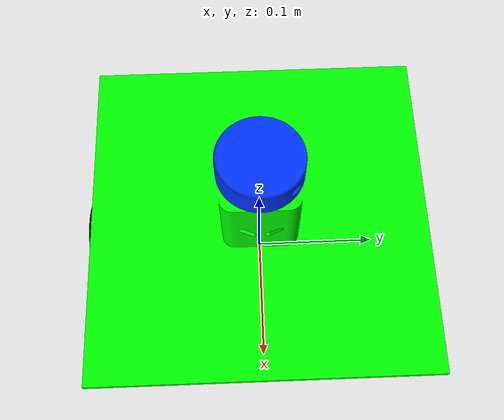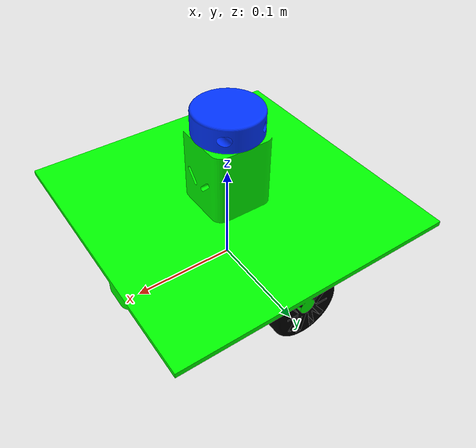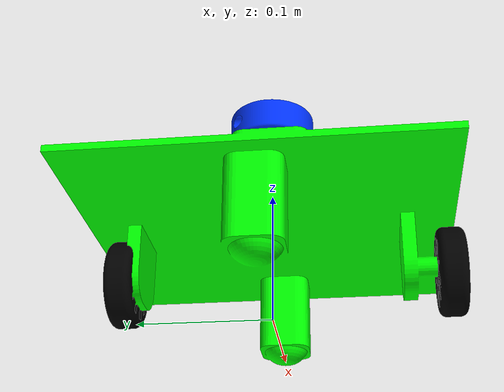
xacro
<?xml version="1.0" ?>
<robot name="nexva" xmlns:xacro="http://www.ros.org/wiki/xacro">

<xacro:include filename="$(find nexva_description)/urdf/materials.xacro" />
<xacro:include filename="$(find nexva_description)/urdf/nexva.gazebo" />

  <link name="base_footprint"/>

  <joint name="base_footprint_joint" type="fixed">
    <parent link="base_footprint"/>
    <child link="base_link"/>

    <origin xyz="0 0 0" rpy="0 0 1.5708"/>
  </joint>

<link name="base_link">
  <inertial>
    <origin xyz="0 0 0" rpy="0 0 0"/>
    <mass value="6.743767331968088"/>
    <inertia ixx="0.040343" iyy="0.056755" izz="0.029008" ixy="1.8e-05" iyz="1e-05" ixz="-0.0"/>
  </inertial>
  <visual>
    <origin xyz="0 0 0.07" rpy="1.5708 0 0"/>
    <geometry>
      <mesh filename="package://nexva_description/meshes/base_link.stl" scale="0.001 0.001 0.001"/>
    </geometry>
    <material name="green"/>
  </visual>
  <collision>
    <origin xyz="0 0 0.07" rpy="1.5708 0 0"/>
    <geometry>
      <mesh filename="package://nexva_description/meshes/base_link.stl" scale="0.001 0.001 0.001"/>
    </geometry>
  </collision>
</link>

<link name="laser">
  <inertial>
    <origin xyz="0 0 0" rpy="0 0 0"/>
    <mass value="0.6304727152144582"/>
    <inertia ixx="0.000197" iyy="0.000327" izz="0.000196" ixy="-0.0" iyz="0.0" ixz="-0.0"/>
  </inertial>
  <visual>
    <origin xyz="0 0 -0.087" rpy="1.5708 0 0"/>
    <geometry>
      <mesh filename="package://nexva_description/meshes/lidar_1.stl" scale="0.001 0.001 0.001"/>
    </geometry>
    <material name="blue"/>
  </visual>
  <collision>
    <origin xyz="0 0 -0.087" rpy="1.5708 0 0"/>
    <geometry>
      <mesh filename="package://nexva_description/meshes/lidar_1.stl" scale="0.001 0.001 0.001"/>
    </geometry>
  </collision>
</link>

<link name="left_wheel_1">
  <inertial>
    <origin xyz="0 0 0" rpy="0 0 0"/>
    <mass value="0.3599022494580457"/>
    <inertia ixx="0.000222" iyy="0.000127" izz="0.000118" ixy="0.0" iyz="0.0" ixz="0.0"/>
  </inertial>
  <visual>
    <origin xyz="0 0 0" rpy="0 0 0"/>
    <geometry>
      <mesh filename="package://nexva_description/meshes/left_wheel_1.stl" scale="0.001 0.001 0.001"/>
    </geometry>
    <material name="black"/>
  </visual>
  <collision>
    <origin xyz="0 0 0" rpy="0 0 0"/>
    <geometry>
      <mesh filename="package://nexva_description/meshes/left_wheel_1.stl" scale="0.001 0.001 0.001"/>
    </geometry>
  </collision>
</link>

<link name="right_wheel_1">
  <inertial>
    <origin xyz="0 0 0" rpy="0 0 0"/>
    <mass value="0.3599022494580457"/>
    <inertia ixx="0.000222" iyy="0.000127" izz="0.000118" ixy="-0.0" iyz="-0.0" ixz="-0.0"/>
  </inertial>
  <visual>
    <origin xyz="0 0 0" rpy="0 0 0"/>
    <geometry>
      <mesh filename="package://nexva_description/meshes/right_wheel_1.stl" scale="0.001 0.001 0.001"/>
    </geometry>
    <material name="black"/>
  </visual>
  <collision>
    <origin xyz="0 0 0" rpy="0 0 0"/>
    <geometry>
      <mesh filename="package://nexva_description/meshes/right_wheel_1.stl" scale="0.001 0.001 0.001"/>
    </geometry>
  </collision>
</link>

<joint name="lidar_joint" type="fixed">
  <origin xyz="0 0 0.157" rpy="0 0 1.5708 "/>
  <parent link="base_link"/>
  <child link="laser"/>
</joint>

<joint name="left_wheel_joint" type="continuous">
  <origin xyz="0.12 0 0.0317" rpy="0 1.5708 1.5708"/>
  <parent link="base_link"/>
  <child link="left_wheel_1"/>
  <axis xyz="0.0 -1.0 0.0"/>
</joint>

<joint name="right_wheel_joint" type="continuous">
  <origin xyz="-0.12 0 0.0317" rpy="0 1.5708 1.5708"/>
  <parent link="base_link"/>
  <child link="right_wheel_1"/>
  <axis xyz="0.0 -1.0 0.0"/>
</joint>

</robot>

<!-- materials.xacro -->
<robot name="robot" xmlns:xacro="http://www.ros.org/wiki/xacro">

  <!-- Silver -->
  <material name="silver">
    <color rgba="0.700 0.700 0.700 1.000"/>
  </material>

  <!-- Red -->
  <material name="red">
    <color rgba="1.000 0.000 0.000 1.000"/>
  </material>

  <!-- Green -->
  <material name="green">
    <color rgba="0.000 1.000 0.000 1.000"/>
  </material>

  <!-- Blue -->
  <material name="blue">
    <color rgba="0.000 0.200 1.000 1.000"/>
  </material>

  <!-- Yellow -->
  <material name="yellow">
    <color rgba="1.000 1.000 0.000 1.000"/>
  </material>

  <!-- Orange -->
  <material name="orange">
    <color rgba="1.000 0.500 0.000 1.000"/>
  </material>

  <!-- Purple -->
  <material name="purple">
    <color rgba="0.600 0.000 0.800 1.000"/>
  </material>

  <!-- Cyan -->
  <material name="cyan">
    <color rgba="0.000 1.000 1.000 1.000"/>
  </material>

  <!-- White -->
  <material name="white">
    <color rgba="1.000 1.000 1.000 1.000"/>
  </material>

  <!-- Black -->
  <material name="black">
    <color rgba="0.000 0.000 0.000 1.000"/>
  </material>

  <!-- Dark Gray -->
  <material name="dark_gray">
    <color rgba="0.150 0.150 0.150 1.000"/>
  </material>

  <!-- Light Gray -->
  <material name="light_gray">
    <color rgba="0.800 0.800 0.800 1.000"/>
  </material>

  <!-- Brown -->
  <material name="brown">
    <color rgba="0.500 0.250 0.100 1.000"/>
  </material>

  <!-- Pink -->
  <material name="pink">
    <color rgba="1.000 0.200 0.600 1.000"/>
  </material>

</robot>
